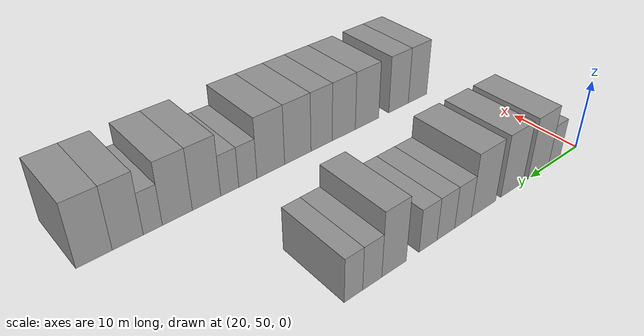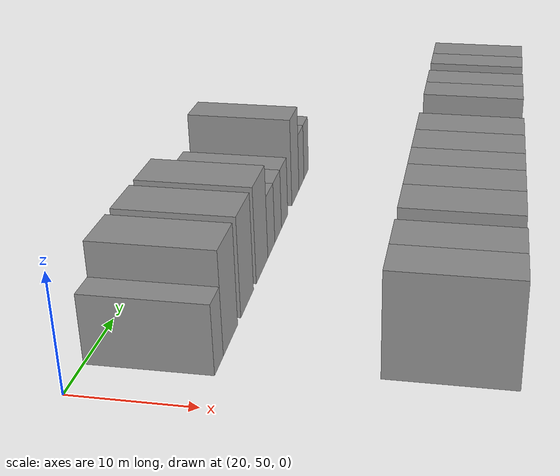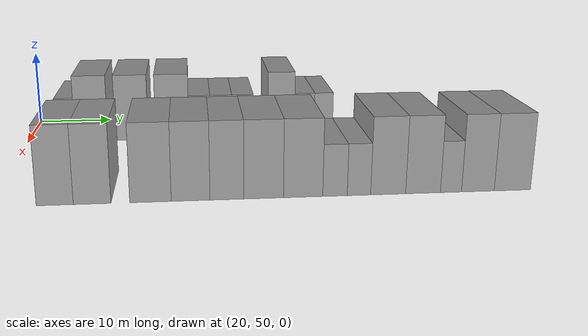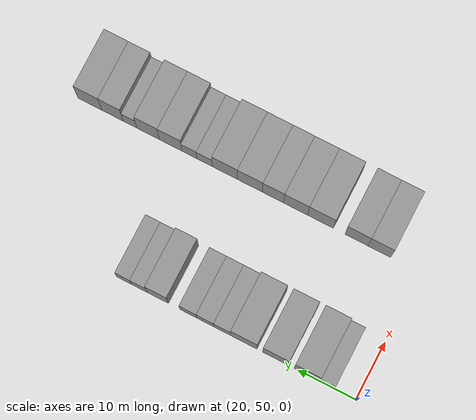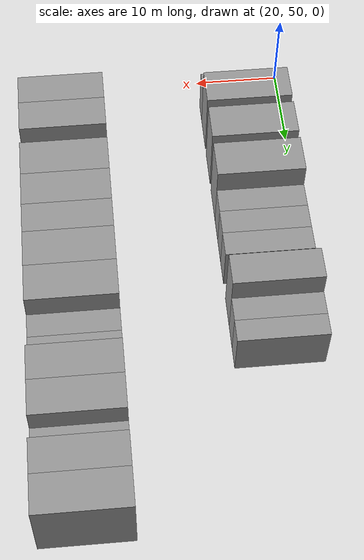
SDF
<sdf version="1.6">
 <world name="default">
  <model name="building_54">
   <static>1</static>
   <pose>25.0000 55.0041 0 0.000000 0.000000 0.000000</pose>
   <link name="link">
    <pose>0 0 3.00 0 0 0</pose>
    <collision name="collision"><geometry><box><size>10.0000 2.4706 6.0000</size></box></geometry></collision>
    <visual name="visual">
     <cast_shadows>0</cast_shadows>
     <geometry><box><size>10.0000 2.4706 6.0000</size></box></geometry>
     <material>
      <script>
       <uri>model://grey_wall/materials/scripts</uri>
       <uri>model://grey_wall/materials/textures</uri>
       <name>vrc/grey_wall</name>
      </script>
     </material>
    </visual>
   </link>
  </model>
  <model name="building_55">
   <static>1</static>
   <pose>25.0000 58.4217 0 0.000000 0.000000 0.000000</pose>
   <link name="link">
    <pose>0 0 4.50 0 0 0</pose>
    <collision name="collision"><geometry><box><size>10.0000 4.3647 9.0000</size></box></geometry></collision>
    <visual name="visual">
     <cast_shadows>0</cast_shadows>
     <geometry><box><size>10.0000 4.3647 9.0000</size></box></geometry>
     <material>
      <script>
       <uri>model://grey_wall/materials/scripts</uri>
       <uri>model://grey_wall/materials/textures</uri>
       <name>vrc/grey_wall</name>
      </script>
     </material>
    </visual>
   </link>
  </model>
  <model name="building_56">
   <static>1</static>
   <pose>25.0000 63.7967 0 0.000000 0.000000 0.000000</pose>
   <link name="link">
    <pose>0 0 4.50 0 0 0</pose>
    <collision name="collision"><geometry><box><size>10.0000 4.3852 9.0000</size></box></geometry></collision>
    <visual name="visual">
     <cast_shadows>0</cast_shadows>
     <geometry><box><size>10.0000 4.3852 9.0000</size></box></geometry>
     <material>
      <script>
       <uri>model://grey_wall/materials/scripts</uri>
       <uri>model://grey_wall/materials/textures</uri>
       <name>vrc/grey_wall</name>
      </script>
     </material>
    </visual>
   </link>
  </model>
  <model name="building_57">
   <static>1</static>
   <pose>25.0000 69.2320 0 0.000000 0.000000 0.000000</pose>
   <link name="link">
    <pose>0 0 4.50 0 0 0</pose>
    <collision name="collision"><geometry><box><size>10.0000 4.4853 9.0000</size></box></geometry></collision>
    <visual name="visual">
     <cast_shadows>0</cast_shadows>
     <geometry><box><size>10.0000 4.4853 9.0000</size></box></geometry>
     <material>
      <script>
       <uri>model://grey_wall/materials/scripts</uri>
       <uri>model://grey_wall/materials/textures</uri>
       <name>vrc/grey_wall</name>
      </script>
     </material>
    </visual>
   </link>
  </model>
  <model name="building_58">
   <static>1</static>
   <pose>25.0000 72.9330 0 0.000000 0.000000 0.000000</pose>
   <link name="link">
    <pose>0 0 3.00 0 0 0</pose>
    <collision name="collision"><geometry><box><size>10.0000 2.9168 6.0000</size></box></geometry></collision>
    <visual name="visual">
     <cast_shadows>0</cast_shadows>
     <geometry><box><size>10.0000 2.9168 6.0000</size></box></geometry>
     <material>
      <script>
       <uri>model://grey_wall/materials/scripts</uri>
       <uri>model://grey_wall/materials/textures</uri>
       <name>vrc/grey_wall</name>
      </script>
     </material>
    </visual>
   </link>
  </model>
  <model name="building_59">
   <static>1</static>
   <pose>25.0000 75.8683 0 0.000000 0.000000 0.000000</pose>
   <link name="link">
    <pose>0 0 3.00 0 0 0</pose>
    <collision name="collision"><geometry><box><size>10.0000 2.9537 6.0000</size></box></geometry></collision>
    <visual name="visual">
     <cast_shadows>0</cast_shadows>
     <geometry><box><size>10.0000 2.9537 6.0000</size></box></geometry>
     <material>
      <script>
       <uri>model://grey_wall/materials/scripts</uri>
       <uri>model://grey_wall/materials/textures</uri>
       <name>vrc/grey_wall</name>
      </script>
     </material>
    </visual>
   </link>
  </model>
  <model name="building_60">
   <static>1</static>
   <pose>25.0000 78.8032 0 0.000000 0.000000 0.000000</pose>
   <link name="link">
    <pose>0 0 3.00 0 0 0</pose>
    <collision name="collision"><geometry><box><size>10.0000 2.9161 6.0000</size></box></geometry></collision>
    <visual name="visual">
     <cast_shadows>0</cast_shadows>
     <geometry><box><size>10.0000 2.9161 6.0000</size></box></geometry>
     <material>
      <script>
       <uri>model://grey_wall/materials/scripts</uri>
       <uri>model://grey_wall/materials/textures</uri>
       <name>vrc/grey_wall</name>
      </script>
     </material>
    </visual>
   </link>
  </model>
  <model name="building_61">
   <static>1</static>
   <pose>25.0000 84.0866 0 0.000000 0.000000 0.000000</pose>
   <link name="link">
    <pose>0 0 4.50 0 0 0</pose>
    <collision name="collision"><geometry><box><size>10.0000 3.6506 9.0000</size></box></geometry></collision>
    <visual name="visual">
     <cast_shadows>0</cast_shadows>
     <geometry><box><size>10.0000 3.6506 9.0000</size></box></geometry>
     <material>
      <script>
       <uri>model://grey_wall/materials/scripts</uri>
       <uri>model://grey_wall/materials/textures</uri>
       <name>vrc/grey_wall</name>
      </script>
     </material>
    </visual>
   </link>
  </model>
  <model name="building_62">
   <static>1</static>
   <pose>25.0000 87.2775 0 0.000000 0.000000 0.000000</pose>
   <link name="link">
    <pose>0 0 3.00 0 0 0</pose>
    <collision name="collision"><geometry><box><size>10.0000 2.7312 6.0000</size></box></geometry></collision>
    <visual name="visual">
     <cast_shadows>0</cast_shadows>
     <geometry><box><size>10.0000 2.7312 6.0000</size></box></geometry>
     <material>
      <script>
       <uri>model://grey_wall/materials/scripts</uri>
       <uri>model://grey_wall/materials/textures</uri>
       <name>vrc/grey_wall</name>
      </script>
     </material>
    </visual>
   </link>
  </model>
  <model name="building_63">
   <static>1</static>
   <pose>25.0000 89.9140 0 0.000000 0.000000 0.000000</pose>
   <link name="link">
    <pose>0 0 3.00 0 0 0</pose>
    <collision name="collision"><geometry><box><size>10.0000 2.5418 6.0000</size></box></geometry></collision>
    <visual name="visual">
     <cast_shadows>0</cast_shadows>
     <geometry><box><size>10.0000 2.5418 6.0000</size></box></geometry>
     <material>
      <script>
       <uri>model://grey_wall/materials/scripts</uri>
       <uri>model://grey_wall/materials/textures</uri>
       <name>vrc/grey_wall</name>
      </script>
     </material>
    </visual>
   </link>
  </model>
  <model name="building_154">
   <static>1</static>
   <pose>47.0000 57.0869 0 0.000000 0.000000 0.000000</pose>
   <link name="link">
    <pose>0 0 4.50 0 0 0</pose>
    <collision name="collision"><geometry><box><size>10.0000 3.9032 9.0000</size></box></geometry></collision>
    <visual name="visual">
     <cast_shadows>0</cast_shadows>
     <geometry><box><size>10.0000 3.9032 9.0000</size></box></geometry>
     <material>
      <script>
       <uri>model://grey_wall/materials/scripts</uri>
       <uri>model://grey_wall/materials/textures</uri>
       <name>vrc/grey_wall</name>
      </script>
     </material>
    </visual>
   </link>
  </model>
  <model name="building_155">
   <static>1</static>
   <pose>47.0000 61.0333 0 0.000000 0.000000 0.000000</pose>
   <link name="link">
    <pose>0 0 4.50 0 0 0</pose>
    <collision name="collision"><geometry><box><size>10.0000 3.9895 9.0000</size></box></geometry></collision>
    <visual name="visual">
     <cast_shadows>0</cast_shadows>
     <geometry><box><size>10.0000 3.9895 9.0000</size></box></geometry>
     <material>
      <script>
       <uri>model://grey_wall/materials/scripts</uri>
       <uri>model://grey_wall/materials/textures</uri>
       <name>vrc/grey_wall</name>
      </script>
     </material>
    </visual>
   </link>
  </model>
  <model name="building_156">
   <static>1</static>
   <pose>47.0000 67.2549 0 0.000000 0.000000 0.000000</pose>
   <link name="link">
    <pose>0 0 4.50 0 0 0</pose>
    <collision name="collision"><geometry><box><size>10.0000 4.4538 9.0000</size></box></geometry></collision>
    <visual name="visual">
     <cast_shadows>0</cast_shadows>
     <geometry><box><size>10.0000 4.4538 9.0000</size></box></geometry>
     <material>
      <script>
       <uri>model://grey_wall/materials/scripts</uri>
       <uri>model://grey_wall/materials/textures</uri>
       <name>vrc/grey_wall</name>
      </script>
     </material>
    </visual>
   </link>
  </model>
  <model name="building_157">
   <static>1</static>
   <pose>47.0000 71.5760 0 0.000000 0.000000 0.000000</pose>
   <link name="link">
    <pose>0 0 4.50 0 0 0</pose>
    <collision name="collision"><geometry><box><size>10.0000 4.1885 9.0000</size></box></geometry></collision>
    <visual name="visual">
     <cast_shadows>0</cast_shadows>
     <geometry><box><size>10.0000 4.1885 9.0000</size></box></geometry>
     <material>
      <script>
       <uri>model://grey_wall/materials/scripts</uri>
       <uri>model://grey_wall/materials/textures</uri>
       <name>vrc/grey_wall</name>
      </script>
     </material>
    </visual>
   </link>
  </model>
  <model name="building_158">
   <static>1</static>
   <pose>47.0000 75.5130 0 0.000000 0.000000 0.000000</pose>
   <link name="link">
    <pose>0 0 4.50 0 0 0</pose>
    <collision name="collision"><geometry><box><size>10.0000 3.6854 9.0000</size></box></geometry></collision>
    <visual name="visual">
     <cast_shadows>0</cast_shadows>
     <geometry><box><size>10.0000 3.6854 9.0000</size></box></geometry>
     <material>
      <script>
       <uri>model://grey_wall/materials/scripts</uri>
       <uri>model://grey_wall/materials/textures</uri>
       <name>vrc/grey_wall</name>
      </script>
     </material>
    </visual>
   </link>
  </model>
  <model name="building_159">
   <static>1</static>
   <pose>47.0000 79.5340 0 0.000000 0.000000 0.000000</pose>
   <link name="link">
    <pose>0 0 4.50 0 0 0</pose>
    <collision name="collision"><geometry><box><size>10.0000 4.3566 9.0000</size></box></geometry></collision>
    <visual name="visual">
     <cast_shadows>0</cast_shadows>
     <geometry><box><size>10.0000 4.3566 9.0000</size></box></geometry>
     <material>
      <script>
       <uri>model://grey_wall/materials/scripts</uri>
       <uri>model://grey_wall/materials/textures</uri>
       <name>vrc/grey_wall</name>
      </script>
     </material>
    </visual>
   </link>
  </model>
  <model name="building_160">
   <static>1</static>
   <pose>47.0000 83.8882 0 0.000000 0.000000 0.000000</pose>
   <link name="link">
    <pose>0 0 4.50 0 0 0</pose>
    <collision name="collision"><geometry><box><size>10.0000 4.3517 9.0000</size></box></geometry></collision>
    <visual name="visual">
     <cast_shadows>0</cast_shadows>
     <geometry><box><size>10.0000 4.3517 9.0000</size></box></geometry>
     <material>
      <script>
       <uri>model://grey_wall/materials/scripts</uri>
       <uri>model://grey_wall/materials/textures</uri>
       <name>vrc/grey_wall</name>
      </script>
     </material>
    </visual>
   </link>
  </model>
  <model name="building_161">
   <static>1</static>
   <pose>47.0000 87.4265 0 0.000000 0.000000 0.000000</pose>
   <link name="link">
    <pose>0 0 3.00 0 0 0</pose>
    <collision name="collision"><geometry><box><size>10.0000 2.7249 6.0000</size></box></geometry></collision>
    <visual name="visual">
     <cast_shadows>0</cast_shadows>
     <geometry><box><size>10.0000 2.7249 6.0000</size></box></geometry>
     <material>
      <script>
       <uri>model://grey_wall/materials/scripts</uri>
       <uri>model://grey_wall/materials/textures</uri>
       <name>vrc/grey_wall</name>
      </script>
     </material>
    </visual>
   </link>
  </model>
  <model name="building_162">
   <static>1</static>
   <pose>47.0000 90.1028 0 0.000000 0.000000 0.000000</pose>
   <link name="link">
    <pose>0 0 3.00 0 0 0</pose>
    <collision name="collision"><geometry><box><size>10.0000 2.6276 6.0000</size></box></geometry></collision>
    <visual name="visual">
     <cast_shadows>0</cast_shadows>
     <geometry><box><size>10.0000 2.6276 6.0000</size></box></geometry>
     <material>
      <script>
       <uri>model://grey_wall/materials/scripts</uri>
       <uri>model://grey_wall/materials/textures</uri>
       <name>vrc/grey_wall</name>
      </script>
     </material>
    </visual>
   </link>
  </model>
  <model name="building_163">
   <static>1</static>
   <pose>47.0000 93.3906 0 0.000000 0.000000 0.000000</pose>
   <link name="link">
    <pose>0 0 4.50 0 0 0</pose>
    <collision name="collision"><geometry><box><size>10.0000 3.9480 9.0000</size></box></geometry></collision>
    <visual name="visual">
     <cast_shadows>0</cast_shadows>
     <geometry><box><size>10.0000 3.9480 9.0000</size></box></geometry>
     <material>
      <script>
       <uri>model://grey_wall/materials/scripts</uri>
       <uri>model://grey_wall/materials/textures</uri>
       <name>vrc/grey_wall</name>
      </script>
     </material>
    </visual>
   </link>
  </model>
  <model name="building_164">
   <static>1</static>
   <pose>47.0000 97.3415 0 0.000000 0.000000 0.000000</pose>
   <link name="link">
    <pose>0 0 4.50 0 0 0</pose>
    <collision name="collision"><geometry><box><size>10.0000 3.9539 9.0000</size></box></geometry></collision>
    <visual name="visual">
     <cast_shadows>0</cast_shadows>
     <geometry><box><size>10.0000 3.9539 9.0000</size></box></geometry>
     <material>
      <script>
       <uri>model://grey_wall/materials/scripts</uri>
       <uri>model://grey_wall/materials/textures</uri>
       <name>vrc/grey_wall</name>
      </script>
     </material>
    </visual>
   </link>
  </model>
  <model name="building_165">
   <static>1</static>
   <pose>47.0000 100.5230 0 0.000000 0.000000 0.000000</pose>
   <link name="link">
    <pose>0 0 3.00 0 0 0</pose>
    <collision name="collision"><geometry><box><size>10.0000 2.4090 6.0000</size></box></geometry></collision>
    <visual name="visual">
     <cast_shadows>0</cast_shadows>
     <geometry><box><size>10.0000 2.4090 6.0000</size></box></geometry>
     <material>
      <script>
       <uri>model://grey_wall/materials/scripts</uri>
       <uri>model://grey_wall/materials/textures</uri>
       <name>vrc/grey_wall</name>
      </script>
     </material>
    </visual>
   </link>
  </model>
  <model name="building_166">
   <static>1</static>
   <pose>47.0000 103.6096 0 0.000000 0.000000 0.000000</pose>
   <link name="link">
    <pose>0 0 4.50 0 0 0</pose>
    <collision name="collision"><geometry><box><size>10.0000 3.7642 9.0000</size></box></geometry></collision>
    <visual name="visual">
     <cast_shadows>0</cast_shadows>
     <geometry><box><size>10.0000 3.7642 9.0000</size></box></geometry>
     <material>
      <script>
       <uri>model://grey_wall/materials/scripts</uri>
       <uri>model://grey_wall/materials/textures</uri>
       <name>vrc/grey_wall</name>
      </script>
     </material>
    </visual>
   </link>
  </model>
  <model name="building_167">
   <static>1</static>
   <pose>47.0000 107.5890 0 0.000000 0.000000 0.000000</pose>
   <link name="link">
    <pose>0 0 4.50 0 0 0</pose>
    <collision name="collision"><geometry><box><size>10.0000 4.1945 9.0000</size></box></geometry></collision>
    <visual name="visual">
     <cast_shadows>0</cast_shadows>
     <geometry><box><size>10.0000 4.1945 9.0000</size></box></geometry>
     <material>
      <script>
       <uri>model://grey_wall/materials/scripts</uri>
       <uri>model://grey_wall/materials/textures</uri>
       <name>vrc/grey_wall</name>
      </script>
     </material>
    </visual>
   </link>
  </model>
 </world>
</sdf>
